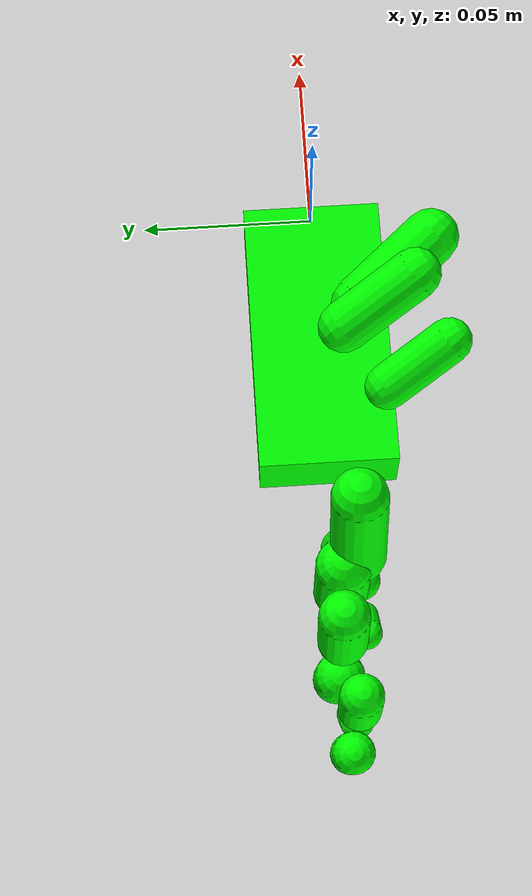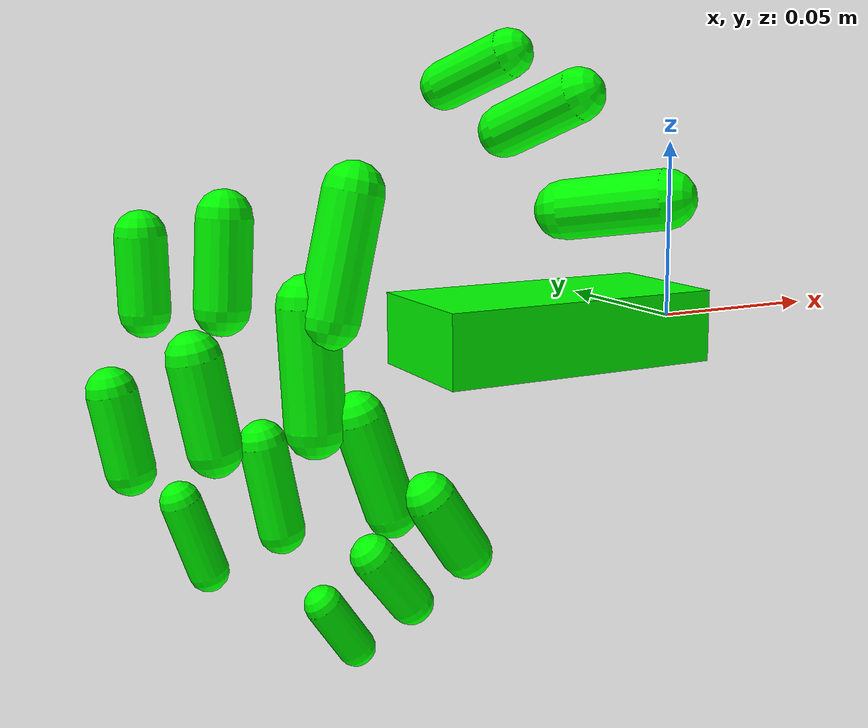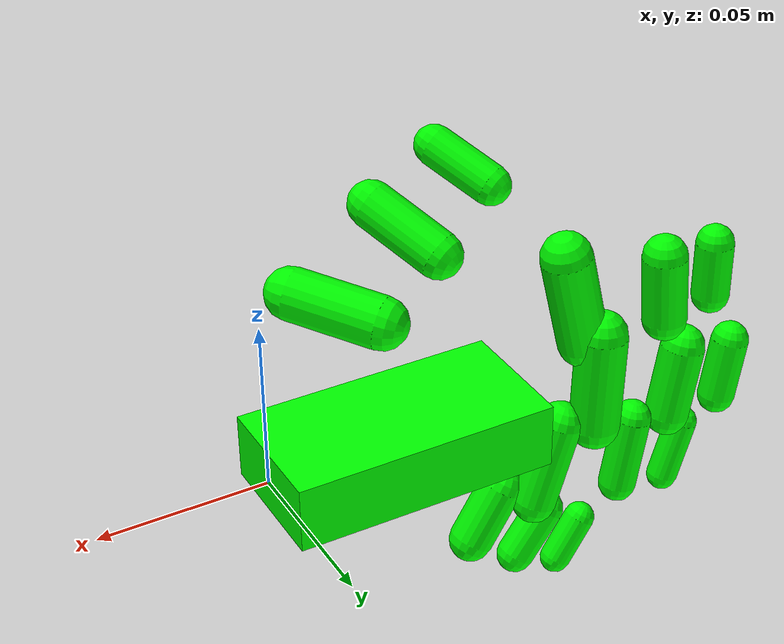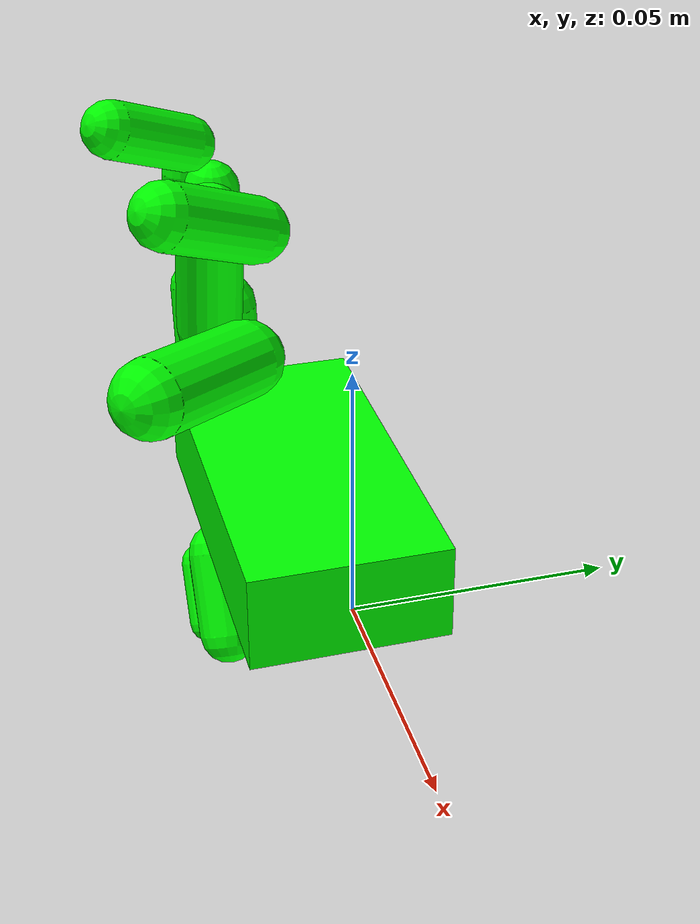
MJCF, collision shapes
<mujoco model="mano">
  <compiler angle="radian" meshdir="meshes/" />

  <default>
    <!-- disable all contacts and use explicit collision pairs -->
    <geom density="800" condim="1" contype="0" conaffinity="0" />
    <!-- with this setting, the response time is around 1s -->
    <position kp="300" dampratio="1.0" inheritrange="0" />
    <joint damping="0.0" armature="1.0" frictionloss="0.0" />
    <site size="0.01" type="sphere" rgba="1 0 0 1" group="3" />

    <default class="right_base_slide">
      <joint type="slide" axis="0 1 0" range="-3.0 3.0" />
      <position kp="1000" ctrlrange="-3.0 3.0" />
    </default>
    <default class="right_base_hinge">
      <joint axis="0 0 1" range="-6.28 6.28" />
      <position kp="1000" ctrlrange="-6.28 6.28" />
    </default>
  </default>

  <asset>
    <texture type="skybox" builtin="gradient" rgb1="0.3 0.5 0.7" rgb2="0 0 0" width="512"
      height="3072" />
    <texture type="2d" name="right_groundplane" builtin="checker" mark="edge" rgb1="0.2 0.3 0.4"
      rgb2="0.1 0.2 0.3"
      markrgb="0.8 0.8 0.8" width="300" height="300" />
    <material name="right_groundplane" texture="right_groundplane" texuniform="true"
      texrepeat="5 5"
      reflectance="0.2" />
    <mesh name="right_palm_vis" content_type="model/obj" file="right_meshes/palm_vis.obj" />
    <mesh name="right_palm_collision" content_type="model/obj"
      file="right_meshes/palm_collision.obj" />
    <mesh name="right_index1_vis" content_type="model/obj" file="right_meshes/index1_vis.obj" />
    <mesh name="right_index1_collision" content_type="model/obj"
      file="right_meshes/index1_collision.obj" />
    <mesh name="right_index2_vis" content_type="model/obj" file="right_meshes/index2_vis.obj" />
    <mesh name="right_index2_collision" content_type="model/obj"
      file="right_meshes/index2_collision.obj" />
    <mesh name="right_index3_vis" content_type="model/obj" file="right_meshes/index3_vis.obj" />
    <mesh name="right_index3_collision" content_type="model/obj"
      file="right_meshes/index3_collision.obj" />
    <mesh name="right_middle1_vis" content_type="model/obj" file="right_meshes/middle1_vis.obj" />
    <mesh name="right_middle1_collision" content_type="model/obj"
      file="right_meshes/middle1_collision.obj" />
    <mesh name="right_middle2_vis" content_type="model/obj" file="right_meshes/middle2_vis.obj" />
    <mesh name="right_middle2_collision" content_type="model/obj"
      file="right_meshes/middle2_collision.obj" />
    <mesh name="right_middle3_vis" content_type="model/obj" file="right_meshes/middle3_vis.obj" />
    <mesh name="right_middle3_collision" content_type="model/obj"
      file="right_meshes/middle3_collision.obj" />
    <mesh name="right_pinky1_vis" content_type="model/obj" file="right_meshes/pinky1_vis.obj" />
    <mesh name="right_pinky1_collision" content_type="model/obj"
      file="right_meshes/pinky1_collision.obj" />
    <mesh name="right_pinky2_vis" content_type="model/obj" file="right_meshes/pinky2_vis.obj" />
    <mesh name="right_pinky2_collision" content_type="model/obj"
      file="right_meshes/pinky2_collision.obj" />
    <mesh name="right_pinky3_vis" content_type="model/obj" file="right_meshes/pinky3_vis.obj" />
    <mesh name="right_pinky3_collision" content_type="model/obj"
      file="right_meshes/pinky3_collision.obj" />
    <mesh name="right_ring1_vis" content_type="model/obj" file="right_meshes/ring1_vis.obj" />
    <mesh name="right_ring1_collision" content_type="model/obj"
      file="right_meshes/ring1_collision.obj" />
    <mesh name="right_ring2_vis" content_type="model/obj" file="right_meshes/ring2_vis.obj" />
    <mesh name="right_ring2_collision" content_type="model/obj"
      file="right_meshes/ring2_collision.obj" />
    <mesh name="right_ring3_vis" content_type="model/obj" file="right_meshes/ring3_vis.obj" />
    <mesh name="right_ring3_collision" content_type="model/obj"
      file="right_meshes/ring3_collision.obj" />
    <mesh name="right_thumb1_vis" content_type="model/obj" file="right_meshes/thumb1_vis.obj" />
    <mesh name="right_thumb1_collision" content_type="model/obj"
      file="right_meshes/thumb1_collision.obj" />
    <mesh name="right_thumb2_vis" content_type="model/obj" file="right_meshes/thumb2_vis.obj" />
    <mesh name="right_thumb2_collision" content_type="model/obj"
      file="right_meshes/thumb2_collision.obj" />
    <mesh name="right_thumb3_vis" content_type="model/obj" file="right_meshes/thumb3_vis.obj" />
    <mesh name="right_thumb3_collision" content_type="model/obj"
      file="right_meshes/thumb3_collision.obj" />
  </asset>

  <worldbody>
    <body name="right_palm" gravcomp="1">
      <joint name="right_pos_x" axis="1 0 0" class="right_base_slide" />
      <joint name="right_pos_y" axis="0 1 0" class="right_base_slide" />
      <joint name="right_pos_z" axis="0 0 1" class="right_base_slide" />
      <joint name="right_rot_x" axis="1 0 0" class="right_base_hinge" />
      <joint name="right_rot_y" axis="0 1 0" class="right_base_hinge" />
      <joint name="right_rot_z" axis="0 0 1" class="right_base_hinge" />

      <geom type="mesh" contype="0" conaffinity="0" group="1" density="0" mesh="right_palm_vis" />
      <geom name="collision_hand_right_palm_0" type="box" size="0.04 0.02 0.01" pos="-0.04 0 0"
        group="3" rgba="0 1 0 1" />
      <site name="right_palm" pos="-0.0946604 -0.00147896 -0.00335754" quat="1 1 -1 -1" />

      <body name="right_index1y" pos="-0.0880972 -0.00520036 0.020686"
        quat="0.992949 0.00330198 0.115013 0.0285073">
        <camera name="right_track" pos="-0.868 -0.348 -0.175"
          xyaxes="-0.037 0.999 -0.000 0.011 -0.000 1.000" />
        <inertial pos="0 0 0" mass="0.02" diaginertia="1.6875e-06 1.6875e-06 1.6875e-06" />
        <joint name="right_j_index1y" pos="0 0 0" axis="0 1 0" range="-0.174533 0.174533" />
        <body name="right_index1z">
          <inertial pos="0 0 0" mass="0.02" diaginertia="1.6875e-06 1.6875e-06 1.6875e-06" />
          <joint name="right_j_index1z" pos="0 0 0" axis="0 0 1" range="0 1.5708" />
          <geom quat="0.992949 -0.00330198 -0.115013 -0.0285073" type="mesh" contype="0"
            conaffinity="0" group="1" density="0" mesh="right_index1_vis" />
          <geom name="collision_hand_right_index_1" type="capsule" size="0.008 0.016"
            pos="-0.016 0 0"
            group="3" rgba="0 1 0 1" />
          <body name="right_index2" pos="-0.0320372 0.00585704 -0.00531176"
            quat="0.992687 0.00261912 -0.0813131 -0.0891864">
            <inertial pos="0 0 0" mass="0.02" diaginertia="1.6875e-06 1.6875e-06 1.6875e-06" />
            <joint name="right_j_index2" pos="0 0 0" axis="0 0 1" range="0 1.74533" />
            <geom quat="0.997574 0.00206105 -0.0338008 0.0608285" type="mesh" contype="0"
              conaffinity="0" group="1" density="0" mesh="right_index2_vis" />
            <geom name="collision_hand_right_index_2" type="capsule" size="0.007 0.011"
              pos="-0.011 0 0" group="3" rgba="0 1 0 1" />
            <body name="right_index3" pos="-0.0217759 -0.00397366 -0.00161355"
              quat="0.995276 0.00115242 -0.0364189 0.0899872">
              <inertial pos="0 0 0" mass="0.02" diaginertia="1.6875e-06 1.6875e-06 1.6875e-06" />
              <joint name="right_j_index3" pos="0 0 0" axis="0 0 1" range="0 1.39626" />
              <geom quat="0.999568 7.53592e-05 0.00257406 -0.0292638" type="mesh" contype="0"
                conaffinity="0" group="1" density="0" mesh="right_index3_vis" />
              <geom name="collision_hand_right_index_3" type="capsule" size="0.006 0.009"
                pos="-0.009 0 0" group="3" rgba="0 1 0 1" />
              <site name="trace_hand_right_index_tip" pos="-0.023106 -0.003671 0" size="0.005"
                rgba="1 0 0 1" />
              <site name="track_hand_right_index_tip" pos="-0.023106 -0.003671 0" size="0.005"
                rgba="0 0 1 1" />
              <site name="right_index_tip" pos="-0.023106 -0.003671 0" quat="1 0 0 0" />
            </body>
          </body>
        </body>
      </body>

      <body name="right_middle1y" pos="-0.0946604 -0.00147896 -0.00335754"
        quat="0.999812 -0.000138377 -0.0177257 0.0078051">
        <inertial pos="0 0 0" mass="0.02" diaginertia="1.6875e-06 1.6875e-06 1.6875e-06" />
        <joint name="right_j_middle1y" pos="0 0 0" axis="0 1 0" range="-0.174533 0.174533" />
        <body name="right_middle1z">
          <inertial pos="0 0 0" mass="0.02" diaginertia="1.6875e-06 1.6875e-06 1.6875e-06" />
          <joint name="right_j_middle1z" pos="0 0 0" axis="0 0 1" range="0 1.5708" />
          <geom quat="0.999812 0.000138377 0.0177257 -0.0078051" type="mesh" contype="0"
            conaffinity="0" group="1" density="0" mesh="right_middle1_vis" />
          <geom name="collision_hand_right_middle_1" type="capsule" size="0.008 0.016"
            pos="-0.016 0 0" group="3" rgba="0 1 0 1" />
          <body name="right_middle2" pos="-0.0313285 0.00235072 -0.00448566"
            quat="0.99679 0.00152841 -0.0709577 -0.037047">
            <inertial pos="0 0 0" mass="0.02" diaginertia="1.6875e-06 1.6875e-06 1.6875e-06" />
            <joint name="right_j_middle2" pos="0 0 0" axis="0 0 1" range="0 1.74533" />
            <geom quat="0.995635 -0.00260071 0.0886064 0.0292231" type="mesh" contype="0"
              conaffinity="0" group="1" density="0" mesh="right_middle2_vis" />
            <geom name="collision_hand_right_middle_2" type="capsule" size="0.007 0.012"
              pos="-0.012 0 0" group="3" rgba="0 1 0 1" />
            <body name="right_middle3" pos="-0.0231278 -0.00261309 0.00016224"
              quat="0.998412 -8.48904e-06 0.00349023 0.0562232">
              <inertial pos="0 0 0" mass="0.02" diaginertia="1.6875e-06 1.6875e-06 1.6875e-06" />
              <joint name="right_j_middle3" pos="0 0 0" axis="0 0 1" range="0 1.39626" />
              <geom quat="0.996006 0.00229162 0.0851367 -0.0268094" type="mesh" contype="0"
                conaffinity="0" group="1" density="0" mesh="right_middle3_vis" />
              <geom name="collision_hand_right_middle_3" type="capsule" size="0.006 0.010"
                pos="-0.010 0 0" group="3" rgba="0 1 0 1" />
              <site name="trace_hand_right_middle_tip" pos="-0.022723 -0.003808 0" size="0.005"
                rgba="1 0 0 1" />
              <site name="track_hand_right_middle_tip" pos="-0.022723 -0.003808 0" size="0.005"
                rgba="0 0 1 1" />
              <site name="right_middle_tip" pos="-0.022723 -0.003808 0" quat="1 0 0 0" />
            </body>
          </body>
        </body>
      </body>

      <body name="right_pinky1y" pos="-0.0687869 -0.00994033 -0.0432093"
        quat="0.959155 -0.0168401 -0.276261 0.0584674">
        <inertial pos="0 0 0" mass="0.02" diaginertia="1.6875e-06 1.6875e-06 1.6875e-06" />
        <joint name="right_j_pinky1y" pos="0 0 0" axis="0 1 0" range="-0.174533 0.174533" />
        <body name="right_pinky1z">
          <inertial pos="0 0 0" mass="0.02" diaginertia="1.6875e-06 1.6875e-06 1.6875e-06" />
          <joint name="right_j_pinky1z" pos="0 0 0" axis="0 0 1" range="0 1.5708" />
          <geom quat="0.959155 0.0168401 0.276261 -0.0584674" type="mesh" contype="0"
            conaffinity="0"
            group="1" density="0" mesh="right_pinky1_vis" />
          <geom name="collision_hand_right_pinky_1" type="capsule" size="0.007 0.010"
            pos="-0.010 0 0"
            group="3" rgba="0 1 0 1" />
          <body name="right_pinky2" pos="-0.0208927 0.0026189 -0.00153353"
            quat="0.997398 -0.00215815 -0.036279 -0.0622646">
            <inertial pos="0 0 0" mass="0.02" diaginertia="1.6875e-06 1.6875e-06 1.6875e-06" />
            <joint name="right_j_pinky2" pos="0 0 0" axis="0 0 1" range="0 1.74533" />
            <geom quat="0.950241 -0.000456125 0.311514 0.00139136" type="mesh" contype="0"
              conaffinity="0" group="1" density="0" mesh="right_pinky2_vis" />
            <geom name="collision_hand_right_pinky_2" type="capsule" size="0.006 0.009"
              pos="-0.009 0 0" group="3" rgba="0 1 0 1" />
            <body name="right_pinky3" pos="-0.0189021 -0.00074651 0.00106698"
              quat="0.999409 0.00047293 0.028183 0.0196984">
              <inertial pos="0 0 0" mass="0.02" diaginertia="1.6875e-06 1.6875e-06 1.6875e-06" />
              <joint name="right_j_pinky3" pos="0 0 0" axis="0 0 1" range="0 1.39626" />
              <geom quat="0.958485 0.00519187 0.284559 -0.0174879" type="mesh" contype="0"
                conaffinity="0" group="1" density="0" mesh="right_pinky3_vis" />
              <geom name="collision_hand_right_pinky_3" type="capsule" size="0.005 0.008"
                pos="-0.008 0 0" group="3" rgba="0 1 0 1" />
              <site name="trace_hand_right_pinky_tip" pos="-0.016054 -0.004705 0" size="0.005"
                rgba="1 0 0 1" />
              <site name="track_hand_right_pinky_tip" pos="-0.016054 -0.004705 0" size="0.005"
                rgba="0 0 1 1" />
              <site name="right_pinky_tip" pos="-0.016054 -0.004705 0" quat="1 0 0 0" />
            </body>
          </body>
        </body>
      </body>

      <body name="right_ring1y" pos="-0.0817355 -0.00395742 -0.0266732"
        quat="0.987327 -0.0036119 -0.157025 0.0227106">
        <inertial pos="0 0 0" mass="0.02" diaginertia="1.6875e-06 1.6875e-06 1.6875e-06" />
        <joint name="right_j_ring1y" pos="0 0 0" axis="0 1 0" range="-0.174533 0.174533" />
        <body name="right_ring1z">
          <inertial pos="0 0 0" mass="0.02" diaginertia="1.6875e-06 1.6875e-06 1.6875e-06" />
          <joint name="right_j_ring1z" pos="0 0 0" axis="0 0 1" range="0 1.5708" />
          <geom quat="0.987327 0.0036119 0.157025 -0.0227106" type="mesh" contype="0"
            conaffinity="0"
            group="1" density="0" mesh="right_ring1_vis" />
          <geom name="collision_hand_right_ring_1" type="capsule" size="0.007 0.014"
            pos="-0.014 0 0"
            group="3" rgba="0 1 0 1" />
          <body name="right_ring2" pos="-0.0283738 0.0033752 0.00393707"
            quat="0.995918 -0.000882244 0.0685799 -0.0586873">
            <inertial pos="0 0 0" mass="0.02" diaginertia="1.6875e-06 1.6875e-06 1.6875e-06" />
            <joint name="right_j_ring2" pos="0 0 0" axis="0 0 1" range="0 1.74533" />
            <geom quat="0.995395 -0.00318966 0.0889052 0.0357119" type="mesh" contype="0"
              conaffinity="0" group="1" density="0" mesh="right_ring2_vis" />
            <geom name="collision_hand_right_ring_2" type="capsule" size="0.006 0.012"
              pos="-0.012 0 0" group="3" rgba="0 1 0 1" />
            <body name="right_ring3" pos="-0.0243171 -0.00343957 -0.0033447"
              quat="0.995261 0.000120758 -0.0677846 0.0697243">
              <inertial pos="0 0 0" mass="0.02" diaginertia="1.6875e-06 1.6875e-06 1.6875e-06" />
              <joint name="right_j_ring3" pos="0 0 0" axis="0 0 1" range="0 1.39626" />
              <geom quat="0.98714 0.00532482 0.156183 -0.033655" type="mesh" contype="0"
                conaffinity="0" group="1" density="0" mesh="right_ring3_vis" />
              <geom name="collision_hand_right_ring_3" type="capsule" size="0.005 0.010"
                pos="-0.010 0 0" group="3" rgba="0 1 0 1" />
              <site name="trace_hand_right_ring_tip" pos="-0.021453 -0.00486 0" size="0.005"
                rgba="1 0 0 1" />
              <site name="track_hand_right_ring_tip" pos="-0.021453 -0.00486 0" size="0.005"
                rgba="0 0 1 1" />
              <site name="right_ring_tip" pos="-0.021453 -0.00486 0" quat="1 0 0 0" />
            </body>
          </body>
        </body>
      </body>

      <body name="right_thumb1x" pos="-0.0240897 -0.0155223 0.0258128"
        quat="0.751793 0.497092 0.432853 -0.0185415">
        <inertial pos="0 0 0" mass="0.02" diaginertia="1.6875e-06 1.6875e-06 1.6875e-06" />
        <joint name="right_j_thumb1x" pos="0 0 0" axis="1 0 0" range="0 1.0472" />
        <body name="right_thumb1y">
          <inertial pos="0 0 0" mass="0.02" diaginertia="1.6875e-06 1.6875e-06 1.6875e-06" />
          <joint name="right_j_thumb1y" pos="0 0 0" axis="0 1 0" range="-0.261799 1.0472" />
          <body name="right_thumb1z">
            <inertial pos="0 0 0" mass="0.02" diaginertia="1.6875e-06 1.6875e-06 1.6875e-06" />
            <joint name="right_j_thumb1z" pos="0 0 0" axis="0 0 1" range="-1.0472 1.0472" />
            <geom quat="0.751793 -0.497092 -0.432853 0.0185414" type="mesh" contype="0"
              conaffinity="0" group="1" density="0" mesh="right_thumb1_vis" />
            <geom name="collision_hand_right_thumb_1" type="capsule" size="0.008 0.014"
              pos="-0.014 0 0" group="3" rgba="0 1 0 1" />
            <body name="right_thumb2y" pos="-0.0277653 0.0087871 -0.00999011"
              quat="0.975097 -0.00949146 -0.164941 -0.147951">
              <inertial pos="0 0 0" mass="0.02" diaginertia="1.6875e-06 1.6875e-06 1.6875e-06" />
              <joint name="right_j_thumb2y" pos="0 0 0" axis="0 1 0" range="-0.174533 0.174533" />
              <body name="right_thumb2z">
                <inertial pos="0 0 0" mass="0.02" diaginertia="1.6875e-06 1.6875e-06 1.6875e-06" />
                <joint name="right_j_thumb2z" pos="0 0 0" axis="0 0 1" range="0 1.5708" />
                <geom quat="0.806442 -0.410478 -0.371794 0.207191" type="mesh" contype="0"
                  conaffinity="0" group="1" density="0" mesh="right_thumb2_vis" />
                <geom name="collision_hand_right_thumb_2" type="capsule" size="0.007 0.012"
                  pos="-0.012 0 0" group="3" rgba="0 1 0 1" />
                <body name="right_thumb3" pos="-0.0251906 -0.00996365 0.00050434"
                  quat="0.982278 0.000921531 0.00965077 0.187179">
                  <inertial pos="0 0 0" mass="0.02" diaginertia="1.6875e-06 1.6875e-06 1.6875e-06" />
                  <joint name="right_j_thumb3" pos="0 0 0" axis="0 0 1" range="0 1.39626" />
                  <geom quat="0.826966 -0.475539 -0.295964 0.0489517" type="mesh" contype="0"
                    conaffinity="0" group="1" density="0" mesh="right_thumb3_vis" />
                  <geom name="collision_hand_right_thumb_3" type="capsule" size="0.006 0.010"
                    pos="-0.010 0 0" group="3" rgba="0 1 0 1" />
                  <site name="trace_hand_right_thumb_tip" pos="-0.026822 -0.00565 0" size="0.005"
                    rgba="1 0 0 1" />
                  <site name="track_hand_right_thumb_tip" pos="-0.026822 -0.00565 0" size="0.005"
                    rgba="0 0 1 1" />
                  <site name="right_thumb_tip" pos="-0.026822 -0.00565 0" quat="1 0 0 0" />
                </body>
              </body>
            </body>
          </body>
        </body>
      </body>
    </body>
  </worldbody>

  <actuator>
    <!-- Base joints -->
    <position name="right_pos_x" joint="right_pos_x" class="right_base_slide" />
    <position name="right_pos_y" joint="right_pos_y" class="right_base_slide" />
    <position name="right_pos_z" joint="right_pos_z" class="right_base_slide" />
    <position name="right_rot_x" joint="right_rot_x" class="right_base_hinge" />
    <position name="right_rot_y" joint="right_rot_y" class="right_base_hinge" />
    <position name="right_rot_z" joint="right_rot_z" class="right_base_hinge" />

    <!-- Index finger joints -->
    <position name="right_j_index1y_position" joint="right_j_index1y" kp="300" />
    <position name="right_j_index1z_position" joint="right_j_index1z" kp="300" />
    <position name="right_j_index2_position" joint="right_j_index2" kp="300" />
    <position name="right_j_index3_position" joint="right_j_index3" kp="300" />

    <!-- Middle finger joints -->
    <position name="right_j_middle1y_position" joint="right_j_middle1y" kp="300" />
    <position name="right_j_middle1z_position" joint="right_j_middle1z" kp="300" />
    <position name="right_j_middle2_position" joint="right_j_middle2" kp="300" />
    <position name="right_j_middle3_position" joint="right_j_middle3" kp="300" />

    <!-- Pinky finger joints -->
    <position name="right_j_pinky1y_position" joint="right_j_pinky1y" kp="300" />
    <position name="right_j_pinky1z_position" joint="right_j_pinky1z" kp="300" />
    <position name="right_j_pinky2_position" joint="right_j_pinky2" kp="300" />
    <position name="right_j_pinky3_position" joint="right_j_pinky3" kp="300" />

    <!-- Ring finger joints -->
    <position name="right_j_ring1y_position" joint="right_j_ring1y" kp="300" />
    <position name="right_j_ring1z_position" joint="right_j_ring1z" kp="300" />
    <position name="right_j_ring2_position" joint="right_j_ring2" kp="300" />
    <position name="right_j_ring3_position" joint="right_j_ring3" kp="300" />

    <!-- Thumb joints -->
    <position name="right_j_thumb1x_position" joint="right_j_thumb1x" kp="300" />
    <position name="right_j_thumb1y_position" joint="right_j_thumb1y" kp="300" />
    <position name="right_j_thumb1z_position" joint="right_j_thumb1z" kp="300" />
    <position name="right_j_thumb2y_position" joint="right_j_thumb2y" kp="300" />
    <position name="right_j_thumb2z_position" joint="right_j_thumb2z" kp="300" />
    <position name="right_j_thumb3_position" joint="right_j_thumb3" kp="300" />
  </actuator>
</mujoco>
